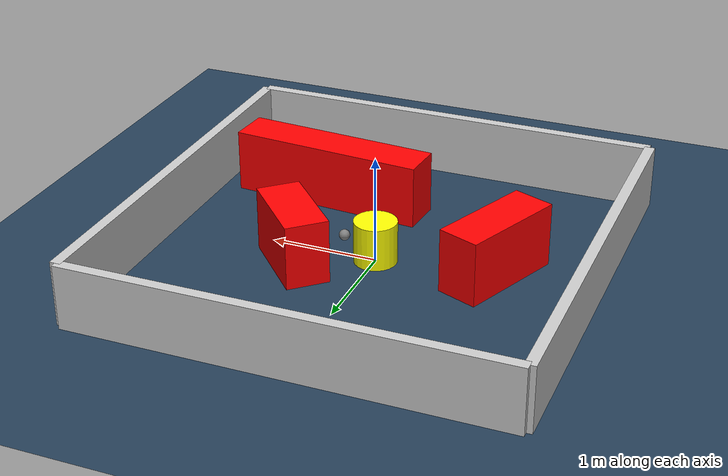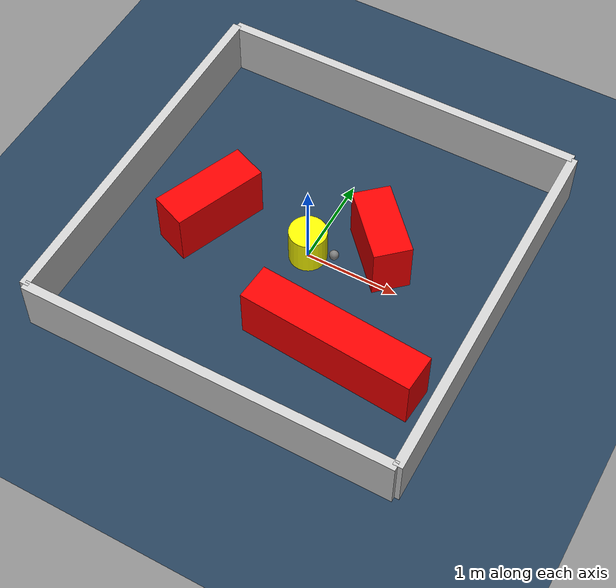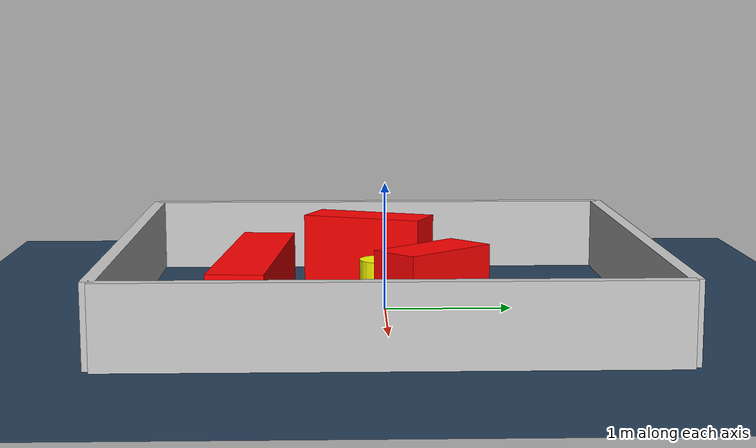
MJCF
<?xml version="1.0" ?>
<mujoco model="generated_environment">
  <option timestep="0.01" integrator="RK4" cone="elliptic"/>
  <default>
    <geom density="1"/>
  </default>
  <asset>
    <texture builtin="gradient" height="3072" rgb1="0.3 0.5 0.7" rgb2="0 0 0" type="skybox" width="512"/>
    <texture builtin="checker" height="300" mark="edge" markrgb="0.8 0.8 0.8" name="groundplane" rgb1="0.2 0.3 0.4" rgb2="0.1 0.2 0.3" type="2d" width="300"/>
    <material name="groundplane" reflectance="0.2" texrepeat="5 5" texture="groundplane" texuniform="true"/>
    <material name="robot" rgba="0.0 1.0 0.0 1"/>
  </asset>
  <worldbody>
    <light dir="0 0 -1" directional="true" pos="0 0 1.5"/>
    <geom condim="4" friction="1.0 0.005 0.001" material="groundplane" name="floor" size="0 0 0.05" type="plane"/>
    <body name="walls">
      <geom name="wall_1" condim="4" pos="-2.0 0.0 0.3" rgba="0.800000011920929 0.800000011920929 0.800000011920929 1.0" size="0.05 2.0 0.3" type="box"/>
      <geom name="wall_2" condim="4" pos="2.0 0.0 0.3" rgba="0.800000011920929 0.800000011920929 0.800000011920929 1.0" size="0.05 2.0 0.3" type="box"/>
      <geom name="wall_3" condim="4" pos="0.0 -2.0 0.3" rgba="0.800000011920929 0.800000011920929 0.800000011920929 1.0" size="2.0 0.05 0.3" type="box"/>
      <geom name="wall_4" condim="4" pos="0.0 2.0 0.3" rgba="0.800000011920929 0.800000011920929 0.800000011920929 1.0" size="2.0 0.05 0.3" type="box"/>
    </body>
    <body name="robot">
      <joint name="joint_x" type="slide" pos="0 0 0" axis="1 0 0"/>
      <joint name="joint_y" type="slide" pos="0 0 0" axis="0 1 0"/>
      <geom name="robot" type="sphere" pos="0.3 0.0 0.2" size="0.05" mass="5." friction="1.0 0.005 0.0001" condim="4" rgba="0.5 0.5 0.5 1.0"/>
      <site name="sensor_ball"/>
    </body>
    <body name="obstacle_movable_1">
      <geom name="obstacle_movable_1" condim="4" pos="0.0 0.0 0.2" euler="0 0 0.0" friction="1.0 0.005 0.001" rgba="1.0 1.0 0.0 1.0" size="0.2 0.2 0.0" type="cylinder" mass="0.1"/>
      <joint type="free"/>
    </body>
    <body name="obstacle_2_static">
      <geom name="obstacle_2_static" condim="4" pos="-1.0817272299430694 -0.10674322192144259 0.3" euler="0 0 68.00111995108371" friction="1.0 0.005 0.001" rgba="1 0 0 1" size="0.5146972291848828 0.2 0.3" type="box"/>
    </body>
    <body name="obstacle_3_static">
      <geom name="obstacle_3_static" condim="4" pos="0.8266894929797688 -0.9842340007687376 0.3" euler="0 0 355.42213123768636" friction="1.0 0.005 0.001" rgba="1 0 0 1" size="0.936860462365593 0.2 0.3" type="box"/>
    </body>
    <body name="obstacle_4_static">
      <geom name="obstacle_4_static" condim="4" pos="0.6521754472634966 0.3381384788704207 0.3" euler="0 0 132.7015324232797" friction="1.0 0.005 0.001" rgba="1 0 0 1" size="0.41175775527447467 0.2 0.3" type="box"/>
    </body>
  </worldbody>
  <actuator>
    <motor name="actuator_x" joint="joint_x" gear="1" ctrlrange="-1 1"/>
    <motor name="actuator_y" joint="joint_y" gear="1" ctrlrange="-1 1"/>
  </actuator>
</mujoco>
